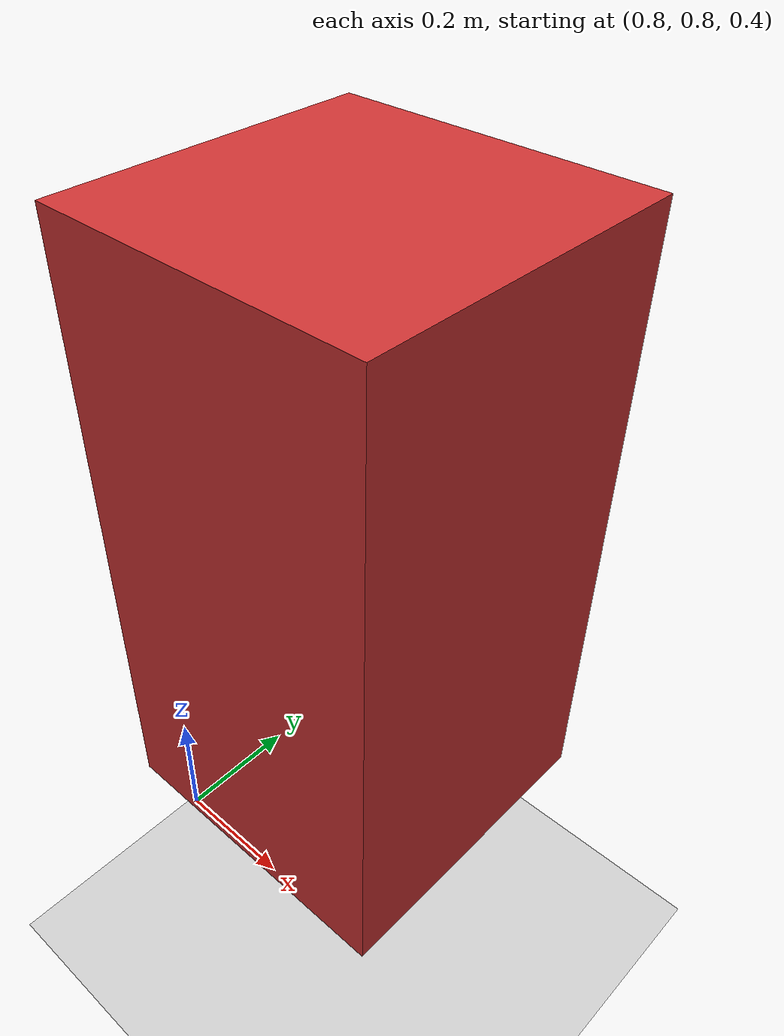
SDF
<?xml version="1.0" ?>
<sdf version="1.8">
  <world name="test_wind_world">
    <!-- Physics Engine Configuration -->
    <physics name="default_physics" default="true" type="dart">
      <max_step_size>0.001</max_step_size>
      <real_time_factor>1.0</real_time_factor>
      <real_time_update_rate>1000</real_time_update_rate>
    </physics>
    <!-- Environmental Wind Plugin -->
    <plugin name="gz::sim::systems::Wind" filename="gz-sim-wind-system">
      <horizontal>
        <magnitude>4.47</magnitude>
        <direction>4.00 2.00 0</direction>
      </horizontal>
    </plugin>
    <!-- Sun Light -->
    <light type="directional" name="sun">
      <cast_shadows>true</cast_shadows>
      <pose>0 0 10 0 0 0</pose>
      <diffuse>0.8 0.8 0.8 1</diffuse>
      <direction>-0.5 0.1 -0.9</direction>
    </light>
    <!-- Ground Plane -->
    <model name="ground_plane">
      <static>true</static>
      <link name="link">
        <collision name="collision">
          <geometry><plane><normal>0 0 1</normal><size>100 100</size></plane></geometry>
        </collision>
        <visual name="visual">
          <geometry><plane><normal>0 0 1</normal><size>100 100</size></plane></geometry>
          <material><ambient>0.8 0.8 0.8 1</ambient></material>
        </visual>
      </link>
    </model>
    <!-- Obstacle: obstacle_0_box -->
    <model name="obstacle_0_box">
      <static>true</static>
      <pose>1.00 1.00 1.00 0 0 0</pose>
      <link name="link">
        <collision name="collision">
          <geometry>
            <box><size>0.5 0.5 1.0</size></box>
          </geometry>
        </collision>
        <visual name="visual">
          <geometry>
            <box><size>0.5 0.5 1.0</size></box>
          </geometry>
          <material><ambient>0.8 0.2 0.2 1</ambient></material>
        </visual>
      </link>
    </model>
  </world>
</sdf>
